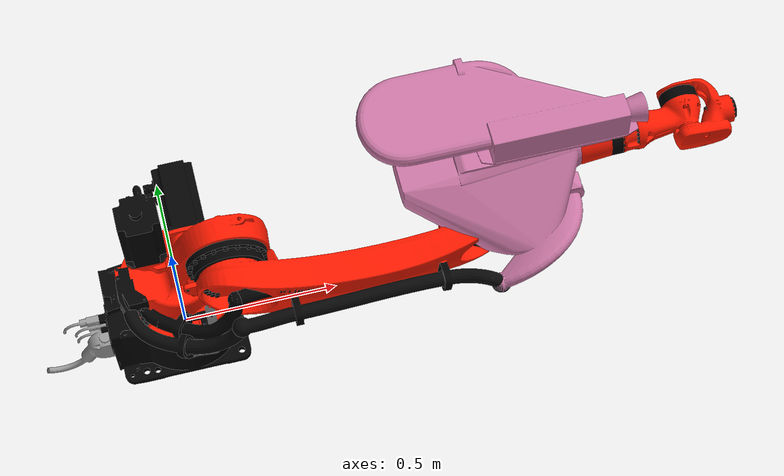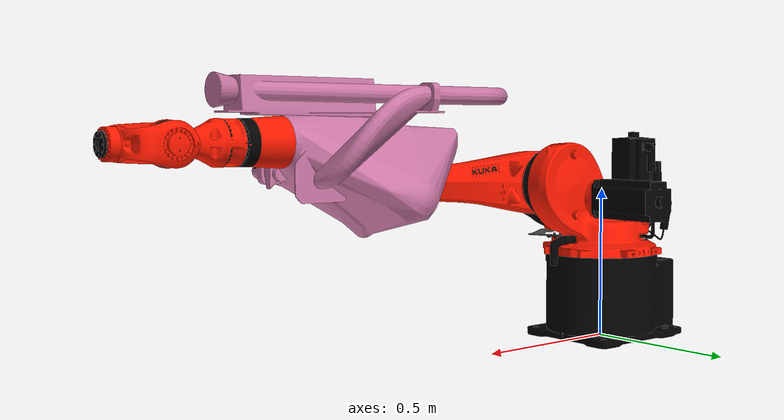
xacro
<?xml version="1.0" encoding="UTF-8"?>
<robot xmlns:xacro="http://ros.org/wiki/xacro" name="kr16_r1610_2">
  <!-- Import macro files  -->
  <xacro:include filename="$(find kuka_cybertech_support)/urdf/kr16_r1610_2_macro.xacro"/>
  <xacro:include filename="$(find kuka_cybertech_support)/urdf/kr_cybertech_ros2_control_macro.xacro"/>
  <!-- Read additional arguments  -->
  <xacro:arg name="driver_version" default="eki_rsi"/>
  <xacro:arg name="mode" default="hardware"/>
  <xacro:arg name="gpio_config" default=""/>
  <xacro:arg name="roundtrip_time" default="0"/>
  <xacro:arg name="client_ip" default="0.0.0.0"/>
  <xacro:arg name="client_port" default="59152"/>
  <xacro:arg name="mxa_client_port" default="1337"/>
  <xacro:arg name="controller_ip" default="0.0.0.0"/>
  <xacro:arg name="verify_robot_model" default="true"/>
  <xacro:arg name="prefix" default=""/>
  <xacro:arg name="x" default="0"/>
  <xacro:arg name="y" default="0"/>
  <xacro:arg name="z" default="0"/>
  <xacro:arg name="roll" default="0"/>
  <xacro:arg name="pitch" default="0"/>
  <xacro:arg name="yaw" default="0"/>
  <xacro:arg name="rsi_xml_config_file" default=""/>
  <xacro:kuka_cybertech_ros2_control name="$(arg prefix)kr16_r1610_2" driver_version="$(arg driver_version)" client_ip="$(arg client_ip)" client_port="$(arg client_port)" mxa_client_port="$(arg mxa_client_port)" controller_ip="$(arg controller_ip)" prefix="$(arg prefix)" mode="$(arg mode)" gpio_config="$(arg gpio_config)" roundtrip_time="$(arg roundtrip_time)" verify_robot_model="$(arg verify_robot_model)" rsi_xml_config_file="$(arg rsi_xml_config_file)">
    <ext_axes_ros2_control_joints/>
  </xacro:kuka_cybertech_ros2_control>
  <!-- world link -->
  <link name="world"/>
  <!-- robot links, joints -->
  <xacro:kuka_kr16_r1610_2_robot prefix="$(arg prefix)" package_name="kuka_cybertech_support"/>
  <!-- default world - base_link joint -->
  <joint name="$(arg prefix)world-base_link" type="fixed">
    <parent link="world"/>
    <child link="$(arg prefix)base_link"/>
    <origin xyz="$(arg x) $(arg y) $(arg z)" rpy="$(arg roll) $(arg pitch) $(arg yaw)"/>
  </joint>
</robot>

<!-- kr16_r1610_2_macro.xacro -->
<robot xmlns:xacro="http://www.ros.org/wiki/xacro" name="kr16_r1610_2">
  <xacro:macro name="kuka_kr16_r1610_2_robot" params="prefix package_name">
    <link name="${prefix}base"/>
    <link name="${prefix}base_link">
      <collision>
        <geometry>
          <mesh filename="package://${package_name}/meshes/kr16_r1610_2/collision/base_link.stl"/>
        </geometry>
        <origin rpy="0.0 -0.0 0.0" xyz="0.0 0.0 0.0"/>
      </collision>
      <inertial>
        <inertia ixx="0.0" ixy="0.0" ixz="0.0" iyy="0.0" iyz="0.0" izz="0.0"/>
        <mass value="6.5217E1"/>
        <origin rpy="0.0 -0.0 0.0" xyz="0.0 0.0 0.0"/>
      </inertial>
      <visual>
        <geometry>
          <mesh filename="package://${package_name}/meshes/kr16_r1610_2/visual/base_link.dae"/>
        </geometry>
        <origin rpy="0.0 -0.0 0.0" xyz="0.0 0.0 0.0"/>
      </visual>
    </link>
    <link name="${prefix}flange"/>
    <link name="${prefix}link_1">
      <collision>
        <geometry>
          <mesh filename="package://${package_name}/meshes/kr16_r1610_2/collision/link_1.stl"/>
        </geometry>
        <origin rpy="-3.141592653589793 0.0 -0.0" xyz="0.0 -3.8294705409337735e-17 0.3127"/>
      </collision>
      <inertial>
        <inertia ixx="0.0" ixy="0.0" ixz="0.0" iyy="0.0" iyz="0.0" izz="1.49867588"/>
        <mass value="8.4207E1"/>
        <origin rpy="0.0 -0.0 0.0" xyz="0.0504706 0.0052813 -0.1312335"/>
      </inertial>
      <visual>
        <geometry>
          <mesh filename="package://${package_name}/meshes/kr16_r1610_2/visual/link_1.dae"/>
        </geometry>
        <origin rpy="-3.141592653589793 0.0 -0.0" xyz="0.0 -3.8294705409337735e-17 0.3127"/>
      </visual>
    </link>
    <link name="${prefix}link_2">
      <collision>
        <geometry>
          <mesh filename="package://${package_name}/meshes/kr16_r1610_2/collision/link_2.stl"/>
        </geometry>
        <origin rpy="1.5707963267948968 -0.0 1.5707963267948966" xyz="-0.52 -0.15999999999999998 7.013552218716891e-17"/>
      </collision>
      <inertial>
        <inertia ixx="5.75908612" ixy="0.0" ixz="0.0" iyy="0.58146603" iyz="0.0" izz="6.02146345"/>
        <mass value="5.5581E1"/>
        <origin rpy="0.0 -1.5707963267948966 -1.5707963267948968" xyz="0.30028478257 0.0 -0.0647077"/>
      </inertial>
      <visual>
        <geometry>
          <mesh filename="package://${package_name}/meshes/kr16_r1610_2/visual/link_2.dae"/>
        </geometry>
        <origin rpy="1.5707963267948968 -0.0 1.5707963267948966" xyz="-0.52 -0.15999999999999998 7.013552218716891e-17"/>
      </visual>
    </link>
    <link name="${prefix}link_3">
      <collision>
        <geometry>
          <mesh filename="package://${package_name}/meshes/kr16_r1610_2/collision/link_3.stl"/>
        </geometry>
        <origin rpy="1.5707963267948968 -0.0 -0.0" xyz="-0.16000000000000006 1.3 7.013552218716891e-17"/>
      </collision>
      <inertial>
        <inertia ixx="0.34836069" ixy="0.0" ixz="0.0" iyy="1.0268737" iyz="0.0" izz="1.13887402"/>
        <mass value="3.5648E1"/>
        <origin rpy="0.0 -0.0 0.0" xyz="0.10935396937 0.0 0.045030299999999995"/>
      </inertial>
      <visual>
        <geometry>
          <mesh filename="package://${package_name}/meshes/kr16_r1610_2/visual/link_3.dae"/>
        </geometry>
        <origin rpy="1.5707963267948968 -0.0 -0.0" xyz="-0.16000000000000006 1.3 7.013552218716891e-17"/>
      </visual>
    </link>
    <link name="${prefix}link_4">
      <collision>
        <geometry>
          <mesh filename="package://${package_name}/meshes/kr16_r1610_2/collision/link_4.stl"/>
        </geometry>
        <origin rpy="1.8369701987210297e-16 1.5707963267948966 0.0" xyz="-1.45 3.419213863219409e-17 0.587"/>
      </collision>
      <inertial>
        <inertia ixx="0.22866295" ixy="0.0" ixz="0.0" iyy="0.03892192" iyz="0.0" izz="0.24951622"/>
        <mass value="1.46280001E1"/>
        <origin rpy="1.5707963267948966 -0.0 1.5707963267948966" xyz="0.0 0.0 -0.18233026869"/>
      </inertial>
      <visual>
        <geometry>
          <mesh filename="package://${package_name}/meshes/kr16_r1610_2/visual/link_4.dae"/>
        </geometry>
        <origin rpy="1.8369701987210297e-16 1.5707963267948966 0.0" xyz="-1.45 3.419213863219409e-17 0.587"/>
      </visual>
    </link>
    <link name="${prefix}link_5">
      <collision>
        <geometry>
          <mesh filename="package://${package_name}/meshes/kr16_r1610_2/collision/link_5.stl"/>
        </geometry>
        <origin rpy="1.5707963267948968 -3.749399456654644e-33 -6.123233995736766e-17" xyz="-0.8150000000000001 1.45 -4.6903972407343906e-18"/>
      </collision>
      <inertial>
        <inertia ixx="0.0" ixy="0.0" ixz="0.0" iyy="0.0" iyz="0.0" izz="0.0"/>
        <mass value="1.0E-6"/>
        <origin rpy="0.0 -0.0 0.0" xyz="0.0 0.0 0.0"/>
      </inertial>
      <visual>
        <geometry>
          <mesh filename="package://${package_name}/meshes/kr16_r1610_2/visual/link_5.dae"/>
        </geometry>
        <origin rpy="1.5707963267948968 -3.749399456654644e-33 -6.123233995736766e-17" xyz="-0.8150000000000001 1.45 -4.6903972407343906e-18"/>
      </visual>
    </link>
    <link name="${prefix}link_6">
      <collision>
        <geometry>
          <mesh filename="package://${package_name}/meshes/kr16_r1610_2/collision/link_6.stl"/>
        </geometry>
        <origin rpy="1.2246467991473532e-16 1.5707963267948966 0.0" xyz="-1.4500000000000002 -6.396330231946627e-17 0.968"/>
      </collision>
      <inertial>
        <inertia ixx="0.0" ixy="0.0" ixz="0.0" iyy="0.0" iyz="0.0" izz="0.0"/>
        <mass value="1.0E-6"/>
        <origin rpy="0.0 -0.0 0.0" xyz="0.0 0.0 0.0"/>
      </inertial>
      <visual>
        <geometry>
          <mesh filename="package://${package_name}/meshes/kr16_r1610_2/visual/link_6.dae"/>
        </geometry>
        <origin rpy="1.2246467991473532e-16 1.5707963267948966 0.0" xyz="-1.4500000000000002 -6.396330231946627e-17 0.968"/>
      </visual>
    </link>
    <link name="${prefix}tool0"/>
    <joint name="${prefix}base_link-base" type="fixed">
      <child link="${prefix}base"/>
      <parent link="${prefix}base_link"/>
    </joint>
    <joint name="${prefix}joint_1" type="revolute">
      <axis xyz="0.0 0.0 1.0"/>
      <child link="${prefix}link_1"/>
      <limit effort="1.8444E3" lower="-3.2288591125E0" upper="3.2288591125E0" velocity="3.4906585E0"/>
      <origin rpy="3.141592653589793 -0.0 0.0" xyz="0.0 0.0 0.3127"/>
      <parent link="${prefix}base_link"/>
    </joint>
    <joint name="${prefix}joint_2" type="revolute">
      <axis xyz="0.0 0.0 1.0"/>
      <child link="${prefix}link_2"/>
      <limit effort="1.63453711078E3" lower="-3.2288591125E0" upper="1.1344640125E0" velocity="3.05432619E0"/>
      <origin rpy="1.5707963267948966 -0.0 0.0" xyz="0.16 0.0 -0.2073"/>
      <parent link="${prefix}link_1"/>
    </joint>
    <joint name="${prefix}joint_3" type="revolute">
      <axis xyz="0.0 0.0 1.0"/>
      <child link="${prefix}link_3"/>
      <limit effort="8.1441288241E2" lower="-2.408554365E0" upper="3.0543261875E0" velocity="3.31612558E0"/>
      <origin rpy="0.0 -0.0 0.0" xyz="0.78 0.0 0.0"/>
      <parent link="${prefix}link_2"/>
    </joint>
    <joint name="${prefix}joint_4" type="revolute">
      <axis xyz="0.0 0.0 1.0"/>
      <child link="${prefix}link_4"/>
      <limit effort="2.5163043332E2" lower="-6.108652375E0" upper="6.108652375E0" velocity="7.50491578E0"/>
      <origin rpy="1.5707963267948966 -0.0 -1.5707963267948966" xyz="0.427 -0.15 0.0"/>
      <parent link="${prefix}link_3"/>
    </joint>
    <joint name="${prefix}joint_5" type="revolute">
      <axis xyz="0.0 0.0 1.0"/>
      <child link="${prefix}link_5"/>
      <limit effort="2.4142476663E2" lower="-2.268928025E0" upper="2.268928025E0" velocity="7.50491578E0"/>
      <origin rpy="0.0 1.5707963267948966 1.5707963267948966" xyz="0.0 0.0 -0.228"/>
      <parent link="${prefix}link_4"/>
    </joint>
    <joint name="${prefix}joint_6" type="revolute">
      <axis xyz="0.0 0.0 1.0"/>
      <child link="${prefix}link_6"/>
      <limit effort="1.0558296E2" lower="-6.108652375E0" upper="6.108652375E0" velocity="1.099557429E1"/>
      <origin rpy="1.5707963267948966 -0.0 -1.5707963267948966" xyz="0.153 0.0 0.0"/>
      <parent link="${prefix}link_5"/>
    </joint>
    <joint name="${prefix}link6-flange" type="fixed">
      <child link="${prefix}flange"/>
      <origin rpy="0.0 1.5707963267948966 0.0" xyz="0.0 0.0 0.0"/>
      <parent link="${prefix}link_6"/>
    </joint>
    <joint name="${prefix}link6-tool0" type="fixed">
      <child link="${prefix}tool0"/>
      <origin rpy="3.141592653589793 1.2246467991473532E-16 3.141592653589793" xyz="0.0 0.0 0.0"/>
      <parent link="${prefix}link_6"/>
    </joint>
  </xacro:macro>
</robot>
